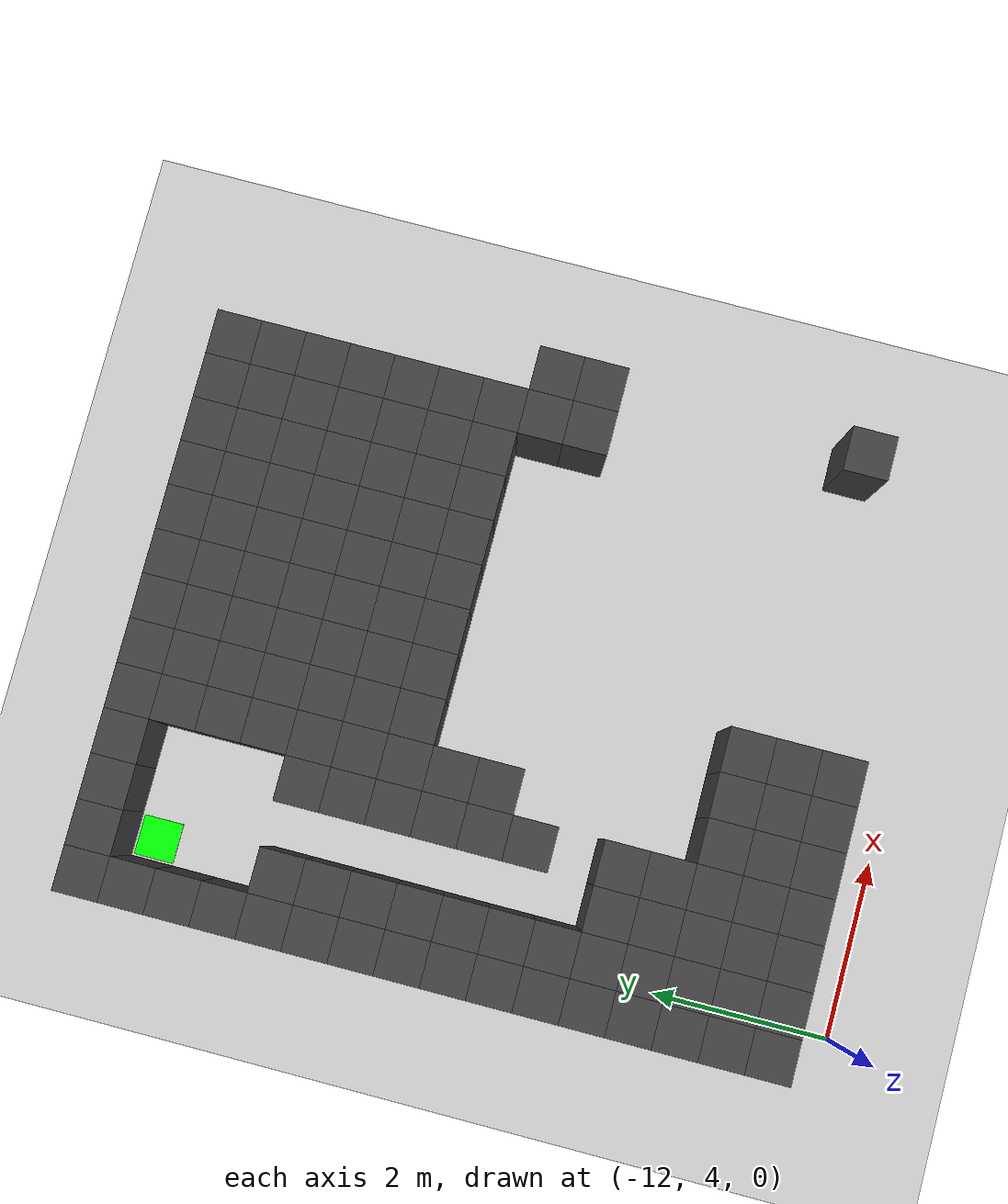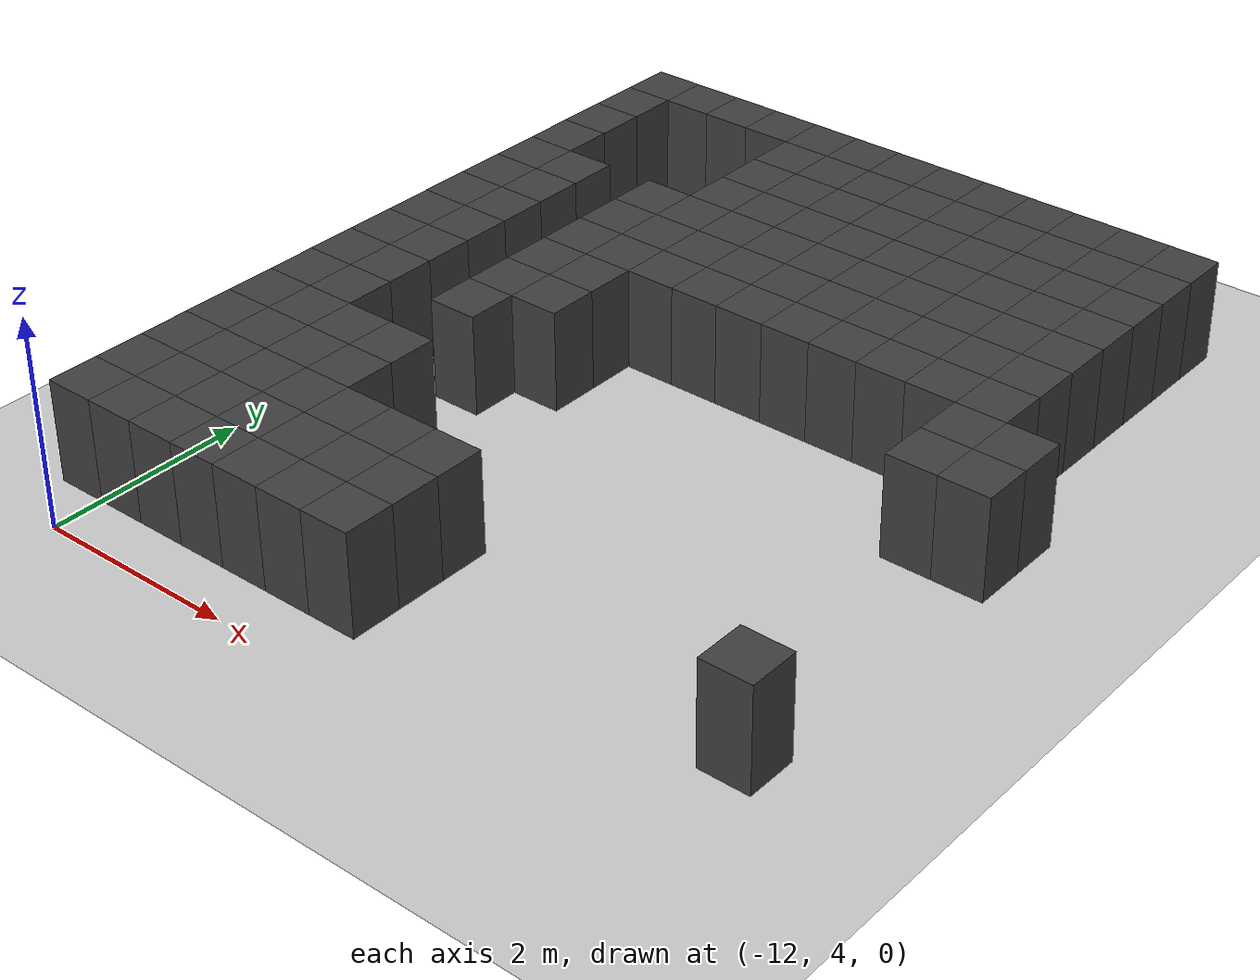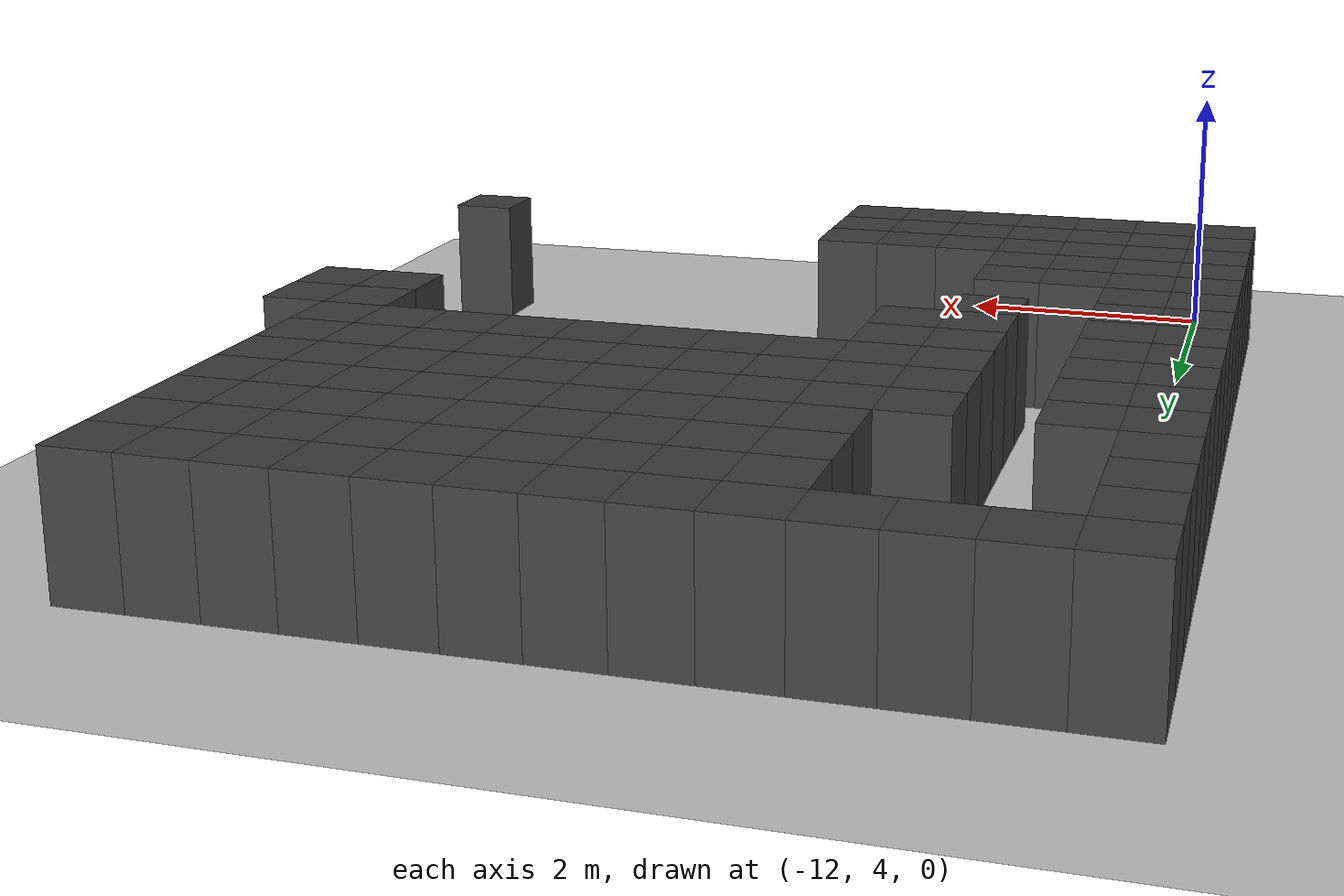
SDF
<sdf version="1.7">
 <world name="map_11672">
  <model name="ground_plane">
   <static>true</static>
   <link name="link">
    <collision name="collision">
     <geometry><plane><normal>0 0 1</normal><size>200 200</size></plane></geometry>
    </collision>
    <visual name="visual">
     <geometry><plane><normal>0 0 1</normal><size>200 200</size></plane></geometry>
     <material><ambient>0.8 0.8 0.8 1</ambient><diffuse>0.8 0.8 0.8 1</diffuse></material>
    </visual>
   </link>
  </model>
  <model name="maze_environment">
   <static>true</static>
   <link name="wall_0">
    <pose>-12.250 12.250 0.500 0 0 0</pose>
    <collision name="col"><geometry><box><size>0.5 0.5 1.0</size></box></geometry></collision>
    <visual name="vis">
     <geometry><box><size>0.5 0.5 1.0</size></box></geometry>
     <material><ambient>0.15 0.15 0.15 1</ambient><diffuse>0.25 0.25 0.25 1</diffuse></material>
    </visual>
   </link>
   <link name="wall_1">
    <pose>-11.750 12.250 0.500 0 0 0</pose>
    <collision name="col"><geometry><box><size>0.5 0.5 1.0</size></box></geometry></collision>
    <visual name="vis">
     <geometry><box><size>0.5 0.5 1.0</size></box></geometry>
     <material><ambient>0.15 0.15 0.15 1</ambient><diffuse>0.25 0.25 0.25 1</diffuse></material>
    </visual>
   </link>
   <link name="wall_2">
    <pose>-11.250 12.250 0.500 0 0 0</pose>
    <collision name="col"><geometry><box><size>0.5 0.5 1.0</size></box></geometry></collision>
    <visual name="vis">
     <geometry><box><size>0.5 0.5 1.0</size></box></geometry>
     <material><ambient>0.15 0.15 0.15 1</ambient><diffuse>0.25 0.25 0.25 1</diffuse></material>
    </visual>
   </link>
   <link name="wall_3">
    <pose>-10.750 12.250 0.500 0 0 0</pose>
    <collision name="col"><geometry><box><size>0.5 0.5 1.0</size></box></geometry></collision>
    <visual name="vis">
     <geometry><box><size>0.5 0.5 1.0</size></box></geometry>
     <material><ambient>0.15 0.15 0.15 1</ambient><diffuse>0.25 0.25 0.25 1</diffuse></material>
    </visual>
   </link>
   <link name="wall_4">
    <pose>-10.250 12.250 0.500 0 0 0</pose>
    <collision name="col"><geometry><box><size>0.5 0.5 1.0</size></box></geometry></collision>
    <visual name="vis">
     <geometry><box><size>0.5 0.5 1.0</size></box></geometry>
     <material><ambient>0.15 0.15 0.15 1</ambient><diffuse>0.25 0.25 0.25 1</diffuse></material>
    </visual>
   </link>
   <link name="wall_5">
    <pose>-9.750 12.250 0.500 0 0 0</pose>
    <collision name="col"><geometry><box><size>0.5 0.5 1.0</size></box></geometry></collision>
    <visual name="vis">
     <geometry><box><size>0.5 0.5 1.0</size></box></geometry>
     <material><ambient>0.15 0.15 0.15 1</ambient><diffuse>0.25 0.25 0.25 1</diffuse></material>
    </visual>
   </link>
   <link name="wall_6">
    <pose>-9.250 12.250 0.500 0 0 0</pose>
    <collision name="col"><geometry><box><size>0.5 0.5 1.0</size></box></geometry></collision>
    <visual name="vis">
     <geometry><box><size>0.5 0.5 1.0</size></box></geometry>
     <material><ambient>0.15 0.15 0.15 1</ambient><diffuse>0.25 0.25 0.25 1</diffuse></material>
    </visual>
   </link>
   <link name="wall_7">
    <pose>-8.750 12.250 0.500 0 0 0</pose>
    <collision name="col"><geometry><box><size>0.5 0.5 1.0</size></box></geometry></collision>
    <visual name="vis">
     <geometry><box><size>0.5 0.5 1.0</size></box></geometry>
     <material><ambient>0.15 0.15 0.15 1</ambient><diffuse>0.25 0.25 0.25 1</diffuse></material>
    </visual>
   </link>
   <link name="wall_8">
    <pose>-8.250 12.250 0.500 0 0 0</pose>
    <collision name="col"><geometry><box><size>0.5 0.5 1.0</size></box></geometry></collision>
    <visual name="vis">
     <geometry><box><size>0.5 0.5 1.0</size></box></geometry>
     <material><ambient>0.15 0.15 0.15 1</ambient><diffuse>0.25 0.25 0.25 1</diffuse></material>
    </visual>
   </link>
   <link name="wall_9">
    <pose>-7.750 12.250 0.500 0 0 0</pose>
    <collision name="col"><geometry><box><size>0.5 0.5 1.0</size></box></geometry></collision>
    <visual name="vis">
     <geometry><box><size>0.5 0.5 1.0</size></box></geometry>
     <material><ambient>0.15 0.15 0.15 1</ambient><diffuse>0.25 0.25 0.25 1</diffuse></material>
    </visual>
   </link>
   <link name="wall_10">
    <pose>-7.250 12.250 0.500 0 0 0</pose>
    <collision name="col"><geometry><box><size>0.5 0.5 1.0</size></box></geometry></collision>
    <visual name="vis">
     <geometry><box><size>0.5 0.5 1.0</size></box></geometry>
     <material><ambient>0.15 0.15 0.15 1</ambient><diffuse>0.25 0.25 0.25 1</diffuse></material>
    </visual>
   </link>
   <link name="wall_11">
    <pose>-6.750 12.250 0.500 0 0 0</pose>
    <collision name="col"><geometry><box><size>0.5 0.5 1.0</size></box></geometry></collision>
    <visual name="vis">
     <geometry><box><size>0.5 0.5 1.0</size></box></geometry>
     <material><ambient>0.15 0.15 0.15 1</ambient><diffuse>0.25 0.25 0.25 1</diffuse></material>
    </visual>
   </link>
   <link name="wall_12">
    <pose>-6.250 12.250 0.500 0 0 0</pose>
    <collision name="col"><geometry><box><size>0.5 0.5 1.0</size></box></geometry></collision>
    <visual name="vis">
     <geometry><box><size>0.5 0.5 1.0</size></box></geometry>
     <material><ambient>0.15 0.15 0.15 1</ambient><diffuse>0.25 0.25 0.25 1</diffuse></material>
    </visual>
   </link>
   <link name="wall_50">
    <pose>-12.250 11.750 0.500 0 0 0</pose>
    <collision name="col"><geometry><box><size>0.5 0.5 1.0</size></box></geometry></collision>
    <visual name="vis">
     <geometry><box><size>0.5 0.5 1.0</size></box></geometry>
     <material><ambient>0.15 0.15 0.15 1</ambient><diffuse>0.25 0.25 0.25 1</diffuse></material>
    </visual>
   </link>
   <link name="wall_51">
    <pose>-10.250 11.750 0.500 0 0 0</pose>
    <collision name="col"><geometry><box><size>0.5 0.5 1.0</size></box></geometry></collision>
    <visual name="vis">
     <geometry><box><size>0.5 0.5 1.0</size></box></geometry>
     <material><ambient>0.15 0.15 0.15 1</ambient><diffuse>0.25 0.25 0.25 1</diffuse></material>
    </visual>
   </link>
   <link name="wall_52">
    <pose>-9.750 11.750 0.500 0 0 0</pose>
    <collision name="col"><geometry><box><size>0.5 0.5 1.0</size></box></geometry></collision>
    <visual name="vis">
     <geometry><box><size>0.5 0.5 1.0</size></box></geometry>
     <material><ambient>0.15 0.15 0.15 1</ambient><diffuse>0.25 0.25 0.25 1</diffuse></material>
    </visual>
   </link>
   <link name="wall_53">
    <pose>-9.250 11.750 0.500 0 0 0</pose>
    <collision name="col"><geometry><box><size>0.5 0.5 1.0</size></box></geometry></collision>
    <visual name="vis">
     <geometry><box><size>0.5 0.5 1.0</size></box></geometry>
     <material><ambient>0.15 0.15 0.15 1</ambient><diffuse>0.25 0.25 0.25 1</diffuse></material>
    </visual>
   </link>
   <link name="wall_54">
    <pose>-8.750 11.750 0.500 0 0 0</pose>
    <collision name="col"><geometry><box><size>0.5 0.5 1.0</size></box></geometry></collision>
    <visual name="vis">
     <geometry><box><size>0.5 0.5 1.0</size></box></geometry>
     <material><ambient>0.15 0.15 0.15 1</ambient><diffuse>0.25 0.25 0.25 1</diffuse></material>
    </visual>
   </link>
   <link name="wall_55">
    <pose>-8.250 11.750 0.500 0 0 0</pose>
    <collision name="col"><geometry><box><size>0.5 0.5 1.0</size></box></geometry></collision>
    <visual name="vis">
     <geometry><box><size>0.5 0.5 1.0</size></box></geometry>
     <material><ambient>0.15 0.15 0.15 1</ambient><diffuse>0.25 0.25 0.25 1</diffuse></material>
    </visual>
   </link>
   <link name="wall_56">
    <pose>-7.750 11.750 0.500 0 0 0</pose>
    <collision name="col"><geometry><box><size>0.5 0.5 1.0</size></box></geometry></collision>
    <visual name="vis">
     <geometry><box><size>0.5 0.5 1.0</size></box></geometry>
     <material><ambient>0.15 0.15 0.15 1</ambient><diffuse>0.25 0.25 0.25 1</diffuse></material>
    </visual>
   </link>
   <link name="wall_57">
    <pose>-7.250 11.750 0.500 0 0 0</pose>
    <collision name="col"><geometry><box><size>0.5 0.5 1.0</size></box></geometry></collision>
    <visual name="vis">
     <geometry><box><size>0.5 0.5 1.0</size></box></geometry>
     <material><ambient>0.15 0.15 0.15 1</ambient><diffuse>0.25 0.25 0.25 1</diffuse></material>
    </visual>
   </link>
   <link name="wall_58">
    <pose>-6.750 11.750 0.500 0 0 0</pose>
    <collision name="col"><geometry><box><size>0.5 0.5 1.0</size></box></geometry></collision>
    <visual name="vis">
     <geometry><box><size>0.5 0.5 1.0</size></box></geometry>
     <material><ambient>0.15 0.15 0.15 1</ambient><diffuse>0.25 0.25 0.25 1</diffuse></material>
    </visual>
   </link>
   <link name="wall_59">
    <pose>-6.250 11.750 0.500 0 0 0</pose>
    <collision name="col"><geometry><box><size>0.5 0.5 1.0</size></box></geometry></collision>
    <visual name="vis">
     <geometry><box><size>0.5 0.5 1.0</size></box></geometry>
     <material><ambient>0.15 0.15 0.15 1</ambient><diffuse>0.25 0.25 0.25 1</diffuse></material>
    </visual>
   </link>
   <link name="wall_97">
    <pose>-12.250 11.250 0.500 0 0 0</pose>
    <collision name="col"><geometry><box><size>0.5 0.5 1.0</size></box></geometry></collision>
    <visual name="vis">
     <geometry><box><size>0.5 0.5 1.0</size></box></geometry>
     <material><ambient>0.15 0.15 0.15 1</ambient><diffuse>0.25 0.25 0.25 1</diffuse></material>
    </visual>
   </link>
   <link name="wall_98">
    <pose>-10.250 11.250 0.500 0 0 0</pose>
    <collision name="col"><geometry><box><size>0.5 0.5 1.0</size></box></geometry></collision>
    <visual name="vis">
     <geometry><box><size>0.5 0.5 1.0</size></box></geometry>
     <material><ambient>0.15 0.15 0.15 1</ambient><diffuse>0.25 0.25 0.25 1</diffuse></material>
    </visual>
   </link>
   <link name="wall_99">
    <pose>-9.750 11.250 0.500 0 0 0</pose>
    <collision name="col"><geometry><box><size>0.5 0.5 1.0</size></box></geometry></collision>
    <visual name="vis">
     <geometry><box><size>0.5 0.5 1.0</size></box></geometry>
     <material><ambient>0.15 0.15 0.15 1</ambient><diffuse>0.25 0.25 0.25 1</diffuse></material>
    </visual>
   </link>
   <link name="wall_100">
    <pose>-9.250 11.250 0.500 0 0 0</pose>
    <collision name="col"><geometry><box><size>0.5 0.5 1.0</size></box></geometry></collision>
    <visual name="vis">
     <geometry><box><size>0.5 0.5 1.0</size></box></geometry>
     <material><ambient>0.15 0.15 0.15 1</ambient><diffuse>0.25 0.25 0.25 1</diffuse></material>
    </visual>
   </link>
   <link name="wall_101">
    <pose>-8.750 11.250 0.500 0 0 0</pose>
    <collision name="col"><geometry><box><size>0.5 0.5 1.0</size></box></geometry></collision>
    <visual name="vis">
     <geometry><box><size>0.5 0.5 1.0</size></box></geometry>
     <material><ambient>0.15 0.15 0.15 1</ambient><diffuse>0.25 0.25 0.25 1</diffuse></material>
    </visual>
   </link>
   <link name="wall_102">
    <pose>-8.250 11.250 0.500 0 0 0</pose>
    <collision name="col"><geometry><box><size>0.5 0.5 1.0</size></box></geometry></collision>
    <visual name="vis">
     <geometry><box><size>0.5 0.5 1.0</size></box></geometry>
     <material><ambient>0.15 0.15 0.15 1</ambient><diffuse>0.25 0.25 0.25 1</diffuse></material>
    </visual>
   </link>
   <link name="wall_103">
    <pose>-7.750 11.250 0.500 0 0 0</pose>
    <collision name="col"><geometry><box><size>0.5 0.5 1.0</size></box></geometry></collision>
    <visual name="vis">
     <geometry><box><size>0.5 0.5 1.0</size></box></geometry>
     <material><ambient>0.15 0.15 0.15 1</ambient><diffuse>0.25 0.25 0.25 1</diffuse></material>
    </visual>
   </link>
   <link name="wall_104">
    <pose>-7.250 11.250 0.500 0 0 0</pose>
    <collision name="col"><geometry><box><size>0.5 0.5 1.0</size></box></geometry></collision>
    <visual name="vis">
     <geometry><box><size>0.5 0.5 1.0</size></box></geometry>
     <material><ambient>0.15 0.15 0.15 1</ambient><diffuse>0.25 0.25 0.25 1</diffuse></material>
    </visual>
   </link>
   <link name="wall_105">
    <pose>-6.750 11.250 0.500 0 0 0</pose>
    <collision name="col"><geometry><box><size>0.5 0.5 1.0</size></box></geometry></collision>
    <visual name="vis">
     <geometry><box><size>0.5 0.5 1.0</size></box></geometry>
     <material><ambient>0.15 0.15 0.15 1</ambient><diffuse>0.25 0.25 0.25 1</diffuse></material>
    </visual>
   </link>
   <link name="wall_106">
    <pose>-6.250 11.250 0.500 0 0 0</pose>
    <collision name="col"><geometry><box><size>0.5 0.5 1.0</size></box></geometry></collision>
    <visual name="vis">
     <geometry><box><size>0.5 0.5 1.0</size></box></geometry>
     <material><ambient>0.15 0.15 0.15 1</ambient><diffuse>0.25 0.25 0.25 1</diffuse></material>
    </visual>
   </link>
   <link name="wall_144">
    <pose>-12.250 10.750 0.500 0 0 0</pose>
    <collision name="col"><geometry><box><size>0.5 0.5 1.0</size></box></geometry></collision>
    <visual name="vis">
     <geometry><box><size>0.5 0.5 1.0</size></box></geometry>
     <material><ambient>0.15 0.15 0.15 1</ambient><diffuse>0.25 0.25 0.25 1</diffuse></material>
    </visual>
   </link>
   <link name="wall_145">
    <pose>-10.250 10.750 0.500 0 0 0</pose>
    <collision name="col"><geometry><box><size>0.5 0.5 1.0</size></box></geometry></collision>
    <visual name="vis">
     <geometry><box><size>0.5 0.5 1.0</size></box></geometry>
     <material><ambient>0.15 0.15 0.15 1</ambient><diffuse>0.25 0.25 0.25 1</diffuse></material>
    </visual>
   </link>
   <link name="wall_146">
    <pose>-9.750 10.750 0.500 0 0 0</pose>
    <collision name="col"><geometry><box><size>0.5 0.5 1.0</size></box></geometry></collision>
    <visual name="vis">
     <geometry><box><size>0.5 0.5 1.0</size></box></geometry>
     <material><ambient>0.15 0.15 0.15 1</ambient><diffuse>0.25 0.25 0.25 1</diffuse></material>
    </visual>
   </link>
   <link name="wall_147">
    <pose>-9.250 10.750 0.500 0 0 0</pose>
    <collision name="col"><geometry><box><size>0.5 0.5 1.0</size></box></geometry></collision>
    <visual name="vis">
     <geometry><box><size>0.5 0.5 1.0</size></box></geometry>
     <material><ambient>0.15 0.15 0.15 1</ambient><diffuse>0.25 0.25 0.25 1</diffuse></material>
    </visual>
   </link>
   <link name="wall_148">
    <pose>-8.750 10.750 0.500 0 0 0</pose>
    <collision name="col"><geometry><box><size>0.5 0.5 1.0</size></box></geometry></collision>
    <visual name="vis">
     <geometry><box><size>0.5 0.5 1.0</size></box></geometry>
     <material><ambient>0.15 0.15 0.15 1</ambient><diffuse>0.25 0.25 0.25 1</diffuse></material>
    </visual>
   </link>
   <link name="wall_149">
    <pose>-8.250 10.750 0.500 0 0 0</pose>
    <collision name="col"><geometry><box><size>0.5 0.5 1.0</size></box></geometry></collision>
    <visual name="vis">
     <geometry><box><size>0.5 0.5 1.0</size></box></geometry>
     <material><ambient>0.15 0.15 0.15 1</ambient><diffuse>0.25 0.25 0.25 1</diffuse></material>
    </visual>
   </link>
   <link name="wall_150">
    <pose>-7.750 10.750 0.500 0 0 0</pose>
    <collision name="col"><geometry><box><size>0.5 0.5 1.0</size></box></geometry></collision>
    <visual name="vis">
     <geometry><box><size>0.5 0.5 1.0</size></box></geometry>
     <material><ambient>0.15 0.15 0.15 1</ambient><diffuse>0.25 0.25 0.25 1</diffuse></material>
    </visual>
   </link>
   <link name="wall_151">
    <pose>-7.250 10.750 0.500 0 0 0</pose>
    <collision name="col"><geometry><box><size>0.5 0.5 1.0</size></box></geometry></collision>
    <visual name="vis">
     <geometry><box><size>0.5 0.5 1.0</size></box></geometry>
     <material><ambient>0.15 0.15 0.15 1</ambient><diffuse>0.25 0.25 0.25 1</diffuse></material>
    </visual>
   </link>
   <link name="wall_152">
    <pose>-6.750 10.750 0.500 0 0 0</pose>
    <collision name="col"><geometry><box><size>0.5 0.5 1.0</size></box></geometry></collision>
    <visual name="vis">
     <geometry><box><size>0.5 0.5 1.0</size></box></geometry>
     <material><ambient>0.15 0.15 0.15 1</ambient><diffuse>0.25 0.25 0.25 1</diffuse></material>
    </visual>
   </link>
   <link name="wall_153">
    <pose>-6.250 10.750 0.500 0 0 0</pose>
    <collision name="col"><geometry><box><size>0.5 0.5 1.0</size></box></geometry></collision>
    <visual name="vis">
     <geometry><box><size>0.5 0.5 1.0</size></box></geometry>
     <material><ambient>0.15 0.15 0.15 1</ambient><diffuse>0.25 0.25 0.25 1</diffuse></material>
    </visual>
   </link>
   <link name="wall_191">
    <pose>-12.250 10.250 0.500 0 0 0</pose>
    <collision name="col"><geometry><box><size>0.5 0.5 1.0</size></box></geometry></collision>
    <visual name="vis">
     <geometry><box><size>0.5 0.5 1.0</size></box></geometry>
     <material><ambient>0.15 0.15 0.15 1</ambient><diffuse>0.25 0.25 0.25 1</diffuse></material>
    </visual>
   </link>
   <link name="wall_192">
    <pose>-11.750 10.250 0.500 0 0 0</pose>
    <collision name="col"><geometry><box><size>0.5 0.5 1.0</size></box></geometry></collision>
    <visual name="vis">
     <geometry><box><size>0.5 0.5 1.0</size></box></geometry>
     <material><ambient>0.15 0.15 0.15 1</ambient><diffuse>0.25 0.25 0.25 1</diffuse></material>
    </visual>
   </link>
   <link name="wall_193">
    <pose>-10.750 10.250 0.500 0 0 0</pose>
    <collision name="col"><geometry><box><size>0.5 0.5 1.0</size></box></geometry></collision>
    <visual name="vis">
     <geometry><box><size>0.5 0.5 1.0</size></box></geometry>
     <material><ambient>0.15 0.15 0.15 1</ambient><diffuse>0.25 0.25 0.25 1</diffuse></material>
    </visual>
   </link>
   <link name="wall_194">
    <pose>-10.250 10.250 0.500 0 0 0</pose>
    <collision name="col"><geometry><box><size>0.5 0.5 1.0</size></box></geometry></collision>
    <visual name="vis">
     <geometry><box><size>0.5 0.5 1.0</size></box></geometry>
     <material><ambient>0.15 0.15 0.15 1</ambient><diffuse>0.25 0.25 0.25 1</diffuse></material>
    </visual>
   </link>
   <link name="wall_195">
    <pose>-9.750 10.250 0.500 0 0 0</pose>
    <collision name="col"><geometry><box><size>0.5 0.5 1.0</size></box></geometry></collision>
    <visual name="vis">
     <geometry><box><size>0.5 0.5 1.0</size></box></geometry>
     <material><ambient>0.15 0.15 0.15 1</ambient><diffuse>0.25 0.25 0.25 1</diffuse></material>
    </visual>
   </link>
   <link name="wall_196">
    <pose>-9.250 10.250 0.500 0 0 0</pose>
    <collision name="col"><geometry><box><size>0.5 0.5 1.0</size></box></geometry></collision>
    <visual name="vis">
     <geometry><box><size>0.5 0.5 1.0</size></box></geometry>
     <material><ambient>0.15 0.15 0.15 1</ambient><diffuse>0.25 0.25 0.25 1</diffuse></material>
    </visual>
   </link>
   <link name="wall_197">
    <pose>-8.750 10.250 0.500 0 0 0</pose>
    <collision name="col"><geometry><box><size>0.5 0.5 1.0</size></box></geometry></collision>
    <visual name="vis">
     <geometry><box><size>0.5 0.5 1.0</size></box></geometry>
     <material><ambient>0.15 0.15 0.15 1</ambient><diffuse>0.25 0.25 0.25 1</diffuse></material>
    </visual>
   </link>
   <link name="wall_198">
    <pose>-8.250 10.250 0.500 0 0 0</pose>
    <collision name="col"><geometry><box><size>0.5 0.5 1.0</size></box></geometry></collision>
    <visual name="vis">
     <geometry><box><size>0.5 0.5 1.0</size></box></geometry>
     <material><ambient>0.15 0.15 0.15 1</ambient><diffuse>0.25 0.25 0.25 1</diffuse></material>
    </visual>
   </link>
   <link name="wall_199">
    <pose>-7.750 10.250 0.500 0 0 0</pose>
    <collision name="col"><geometry><box><size>0.5 0.5 1.0</size></box></geometry></collision>
    <visual name="vis">
     <geometry><box><size>0.5 0.5 1.0</size></box></geometry>
     <material><ambient>0.15 0.15 0.15 1</ambient><diffuse>0.25 0.25 0.25 1</diffuse></material>
    </visual>
   </link>
   <link name="wall_200">
    <pose>-7.250 10.250 0.500 0 0 0</pose>
    <collision name="col"><geometry><box><size>0.5 0.5 1.0</size></box></geometry></collision>
    <visual name="vis">
     <geometry><box><size>0.5 0.5 1.0</size></box></geometry>
     <material><ambient>0.15 0.15 0.15 1</ambient><diffuse>0.25 0.25 0.25 1</diffuse></material>
    </visual>
   </link>
   <link name="wall_201">
    <pose>-6.750 10.250 0.500 0 0 0</pose>
    <collision name="col"><geometry><box><size>0.5 0.5 1.0</size></box></geometry></collision>
    <visual name="vis">
     <geometry><box><size>0.5 0.5 1.0</size></box></geometry>
     <material><ambient>0.15 0.15 0.15 1</ambient><diffuse>0.25 0.25 0.25 1</diffuse></material>
    </visual>
   </link>
   <link name="wall_202">
    <pose>-6.250 10.250 0.500 0 0 0</pose>
    <collision name="col"><geometry><box><size>0.5 0.5 1.0</size></box></geometry></collision>
    <visual name="vis">
     <geometry><box><size>0.5 0.5 1.0</size></box></geometry>
     <material><ambient>0.15 0.15 0.15 1</ambient><diffuse>0.25 0.25 0.25 1</diffuse></material>
    </visual>
   </link>
   <link name="wall_240">
    <pose>-12.250 9.750 0.500 0 0 0</pose>
    <collision name="col"><geometry><box><size>0.5 0.5 1.0</size></box></geometry></collision>
    <visual name="vis">
     <geometry><box><size>0.5 0.5 1.0</size></box></geometry>
     <material><ambient>0.15 0.15 0.15 1</ambient><diffuse>0.25 0.25 0.25 1</diffuse></material>
    </visual>
   </link>
   <link name="wall_241">
    <pose>-11.750 9.750 0.500 0 0 0</pose>
    <collision name="col"><geometry><box><size>0.5 0.5 1.0</size></box></geometry></collision>
    <visual name="vis">
     <geometry><box><size>0.5 0.5 1.0</size></box></geometry>
     <material><ambient>0.15 0.15 0.15 1</ambient><diffuse>0.25 0.25 0.25 1</diffuse></material>
    </visual>
   </link>
   <link name="wall_242">
    <pose>-10.750 9.750 0.500 0 0 0</pose>
    <collision name="col"><geometry><box><size>0.5 0.5 1.0</size></box></geometry></collision>
    <visual name="vis">
     <geometry><box><size>0.5 0.5 1.0</size></box></geometry>
     <material><ambient>0.15 0.15 0.15 1</ambient><diffuse>0.25 0.25 0.25 1</diffuse></material>
    </visual>
   </link>
   <link name="wall_243">
    <pose>-10.250 9.750 0.500 0 0 0</pose>
    <collision name="col"><geometry><box><size>0.5 0.5 1.0</size></box></geometry></collision>
    <visual name="vis">
     <geometry><box><size>0.5 0.5 1.0</size></box></geometry>
     <material><ambient>0.15 0.15 0.15 1</ambient><diffuse>0.25 0.25 0.25 1</diffuse></material>
    </visual>
   </link>
   <link name="wall_244">
    <pose>-9.750 9.750 0.500 0 0 0</pose>
    <collision name="col"><geometry><box><size>0.5 0.5 1.0</size></box></geometry></collision>
    <visual name="vis">
     <geometry><box><size>0.5 0.5 1.0</size></box></geometry>
     <material><ambient>0.15 0.15 0.15 1</ambient><diffuse>0.25 0.25 0.25 1</diffuse></material>
    </visual>
   </link>
   <link name="wall_245">
    <pose>-9.250 9.750 0.500 0 0 0</pose>
    <collision name="col"><geometry><box><size>0.5 0.5 1.0</size></box></geometry></collision>
    <visual name="vis">
     <geometry><box><size>0.5 0.5 1.0</size></box></geometry>
     <material><ambient>0.15 0.15 0.15 1</ambient><diffuse>0.25 0.25 0.25 1</diffuse></material>
    </visual>
   </link>
   <link name="wall_246">
    <pose>-8.750 9.750 0.500 0 0 0</pose>
    <collision name="col"><geometry><box><size>0.5 0.5 1.0</size></box></geometry></collision>
    <visual name="vis">
     <geometry><box><size>0.5 0.5 1.0</size></box></geometry>
     <material><ambient>0.15 0.15 0.15 1</ambient><diffuse>0.25 0.25 0.25 1</diffuse></material>
    </visual>
   </link>
   <link name="wall_247">
    <pose>-8.250 9.750 0.500 0 0 0</pose>
    <collision name="col"><geometry><box><size>0.5 0.5 1.0</size></box></geometry></collision>
    <visual name="vis">
     <geometry><box><size>0.5 0.5 1.0</size></box></geometry>
     <material><ambient>0.15 0.15 0.15 1</ambient><diffuse>0.25 0.25 0.25 1</diffuse></material>
    </visual>
   </link>
   <link name="wall_248">
    <pose>-7.750 9.750 0.500 0 0 0</pose>
    <collision name="col"><geometry><box><size>0.5 0.5 1.0</size></box></geometry></collision>
    <visual name="vis">
     <geometry><box><size>0.5 0.5 1.0</size></box></geometry>
     <material><ambient>0.15 0.15 0.15 1</ambient><diffuse>0.25 0.25 0.25 1</diffuse></material>
    </visual>
   </link>
   <link name="wall_249">
    <pose>-7.250 9.750 0.500 0 0 0</pose>
    <collision name="col"><geometry><box><size>0.5 0.5 1.0</size></box></geometry></collision>
    <visual name="vis">
     <geometry><box><size>0.5 0.5 1.0</size></box></geometry>
     <material><ambient>0.15 0.15 0.15 1</ambient><diffuse>0.25 0.25 0.25 1</diffuse></material>
    </visual>
   </link>
   <link name="wall_250">
    <pose>-6.750 9.750 0.500 0 0 0</pose>
    <collision name="col"><geometry><box><size>0.5 0.5 1.0</size></box></geometry></collision>
    <visual name="vis">
     <geometry><box><size>0.5 0.5 1.0</size></box></geometry>
     <material><ambient>0.15 0.15 0.15 1</ambient><diffuse>0.25 0.25 0.25 1</diffuse></material>
    </visual>
   </link>
   <link name="wall_251">
    <pose>-6.250 9.750 0.500 0 0 0</pose>
    <collision name="col"><geometry><box><size>0.5 0.5 1.0</size></box></geometry></collision>
    <visual name="vis">
     <geometry><box><size>0.5 0.5 1.0</size></box></geometry>
     <material><ambient>0.15 0.15 0.15 1</ambient><diffuse>0.25 0.25 0.25 1</diffuse></material>
    </visual>
   </link>
   <link name="wall_289">
    <pose>-12.250 9.250 0.500 0 0 0</pose>
    <collision name="col"><geometry><box><size>0.5 0.5 1.0</size></box></geometry></collision>
    <visual name="vis">
     <geometry><box><size>0.5 0.5 1.0</size></box></geometry>
     <material><ambient>0.15 0.15 0.15 1</ambient><diffuse>0.25 0.25 0.25 1</diffuse></material>
    </visual>
   </link>
   <link name="wall_290">
    <pose>-11.750 9.250 0.500 0 0 0</pose>
    <collision name="col"><geometry><box><size>0.5 0.5 1.0</size></box></geometry></collision>
    <visual name="vis">
     <geometry><box><size>0.5 0.5 1.0</size></box></geometry>
     <material><ambient>0.15 0.15 0.15 1</ambient><diffuse>0.25 0.25 0.25 1</diffuse></material>
    </visual>
   </link>
   <link name="wall_291">
    <pose>-10.750 9.250 0.500 0 0 0</pose>
    <collision name="col"><geometry><box><size>0.5 0.5 1.0</size></box></geometry></collision>
    <visual name="vis">
     <geometry><box><size>0.5 0.5 1.0</size></box></geometry>
     <material><ambient>0.15 0.15 0.15 1</ambient><diffuse>0.25 0.25 0.25 1</diffuse></material>
    </visual>
   </link>
   <link name="wall_292">
    <pose>-10.250 9.250 0.500 0 0 0</pose>
    <collision name="col"><geometry><box><size>0.5 0.5 1.0</size></box></geometry></collision>
    <visual name="vis">
     <geometry><box><size>0.5 0.5 1.0</size></box></geometry>
     <material><ambient>0.15 0.15 0.15 1</ambient><diffuse>0.25 0.25 0.25 1</diffuse></material>
    </visual>
   </link>
   <link name="wall_293">
    <pose>-9.750 9.250 0.500 0 0 0</pose>
    <collision name="col"><geometry><box><size>0.5 0.5 1.0</size></box></geometry></collision>
    <visual name="vis">
     <geometry><box><size>0.5 0.5 1.0</size></box></geometry>
     <material><ambient>0.15 0.15 0.15 1</ambient><diffuse>0.25 0.25 0.25 1</diffuse></material>
    </visual>
   </link>
   <link name="wall_294">
    <pose>-9.250 9.250 0.500 0 0 0</pose>
    <collision name="col"><geometry><box><size>0.5 0.5 1.0</size></box></geometry></collision>
    <visual name="vis">
     <geometry><box><size>0.5 0.5 1.0</size></box></geometry>
     <material><ambient>0.15 0.15 0.15 1</ambient><diffuse>0.25 0.25 0.25 1</diffuse></material>
    </visual>
   </link>
   <link name="wall_295">
    <pose>-8.750 9.250 0.500 0 0 0</pose>
    <collision name="col"><geometry><box><size>0.5 0.5 1.0</size></box></geometry></collision>
    <visual name="vis">
     <geometry><box><size>0.5 0.5 1.0</size></box></geometry>
     <material><ambient>0.15 0.15 0.15 1</ambient><diffuse>0.25 0.25 0.25 1</diffuse></material>
    </visual>
   </link>
   <link name="wall_296">
    <pose>-8.250 9.250 0.500 0 0 0</pose>
    <collision name="col"><geometry><box><size>0.5 0.5 1.0</size></box></geometry></collision>
    <visual name="vis">
     <geometry><box><size>0.5 0.5 1.0</size></box></geometry>
     <material><ambient>0.15 0.15 0.15 1</ambient><diffuse>0.25 0.25 0.25 1</diffuse></material>
    </visual>
   </link>
   <link name="wall_297">
    <pose>-7.750 9.250 0.500 0 0 0</pose>
    <collision name="col"><geometry><box><size>0.5 0.5 1.0</size></box></geometry></collision>
    <visual name="vis">
     <geometry><box><size>0.5 0.5 1.0</size></box></geometry>
     <material><ambient>0.15 0.15 0.15 1</ambient><diffuse>0.25 0.25 0.25 1</diffuse></material>
    </visual>
   </link>
   <link name="wall_298">
    <pose>-7.250 9.250 0.500 0 0 0</pose>
    <collision name="col"><geometry><box><size>0.5 0.5 1.0</size></box></geometry></collision>
    <visual name="vis">
     <geometry><box><size>0.5 0.5 1.0</size></box></geometry>
     <material><ambient>0.15 0.15 0.15 1</ambient><diffuse>0.25 0.25 0.25 1</diffuse></material>
    </visual>
   </link>
   <link name="wall_299">
    <pose>-6.750 9.250 0.500 0 0 0</pose>
    <collision name="col"><geometry><box><size>0.5 0.5 1.0</size></box></geometry></collision>
    <visual name="vis">
     <geometry><box><size>0.5 0.5 1.0</size></box></geometry>
     <material><ambient>0.15 0.15 0.15 1</ambient><diffuse>0.25 0.25 0.25 1</diffuse></material>
    </visual>
   </link>
   <link name="wall_300">
    <pose>-6.250 9.250 0.500 0 0 0</pose>
    <collision name="col"><geometry><box><size>0.5 0.5 1.0</size></box></geometry></collision>
    <visual name="vis">
     <geometry><box><size>0.5 0.5 1.0</size></box></geometry>
     <material><ambient>0.15 0.15 0.15 1</ambient><diffuse>0.25 0.25 0.25 1</diffuse></material>
    </visual>
   </link>
   <link name="wall_338">
    <pose>-12.250 8.750 0.500 0 0 0</pose>
    <collision name="col"><geometry><box><size>0.5 0.5 1.0</size></box></geometry></collision>
    <visual name="vis">
     <geometry><box><size>0.5 0.5 1.0</size></box></geometry>
     <material><ambient>0.15 0.15 0.15 1</ambient><diffuse>0.25 0.25 0.25 1</diffuse></material>
    </visual>
   </link>
   <link name="wall_339">
    <pose>-11.750 8.750 0.500 0 0 0</pose>
    <collision name="col"><geometry><box><size>0.5 0.5 1.0</size></box></geometry></collision>
    <visual name="vis">
     <geometry><box><size>0.5 0.5 1.0</size></box></geometry>
     <material><ambient>0.15 0.15 0.15 1</ambient><diffuse>0.25 0.25 0.25 1</diffuse></material>
    </visual>
   </link>
   <link name="wall_340">
    <pose>-10.750 8.750 0.500 0 0 0</pose>
    <collision name="col"><geometry><box><size>0.5 0.5 1.0</size></box></geometry></collision>
    <visual name="vis">
     <geometry><box><size>0.5 0.5 1.0</size></box></geometry>
     <material><ambient>0.15 0.15 0.15 1</ambient><diffuse>0.25 0.25 0.25 1</diffuse></material>
    </visual>
   </link>
   <link name="wall_341">
    <pose>-10.250 8.750 0.500 0 0 0</pose>
    <collision name="col"><geometry><box><size>0.5 0.5 1.0</size></box></geometry></collision>
    <visual name="vis">
     <geometry><box><size>0.5 0.5 1.0</size></box></geometry>
     <material><ambient>0.15 0.15 0.15 1</ambient><diffuse>0.25 0.25 0.25 1</diffuse></material>
    </visual>
   </link>
   <link name="wall_342">
    <pose>-6.250 8.750 0.500 0 0 0</pose>
    <collision name="col"><geometry><box><size>0.5 0.5 1.0</size></box></geometry></collision>
    <visual name="vis">
     <geometry><box><size>0.5 0.5 1.0</size></box></geometry>
     <material><ambient>0.15 0.15 0.15 1</ambient><diffuse>0.25 0.25 0.25 1</diffuse></material>
    </visual>
   </link>
   <link name="wall_343">
    <pose>-5.750 8.750 0.500 0 0 0</pose>
    <collision name="col"><geometry><box><size>0.5 0.5 1.0</size></box></geometry></collision>
    <visual name="vis">
     <geometry><box><size>0.5 0.5 1.0</size></box></geometry>
     <material><ambient>0.15 0.15 0.15 1</ambient><diffuse>0.25 0.25 0.25 1</diffuse></material>
    </visual>
   </link>
   <link name="wall_380">
    <pose>-12.250 8.250 0.500 0 0 0</pose>
    <collision name="col"><geometry><box><size>0.5 0.5 1.0</size></box></geometry></collision>
    <visual name="vis">
     <geometry><box><size>0.5 0.5 1.0</size></box></geometry>
     <material><ambient>0.15 0.15 0.15 1</ambient><diffuse>0.25 0.25 0.25 1</diffuse></material>
    </visual>
   </link>
   <link name="wall_381">
    <pose>-11.750 8.250 0.500 0 0 0</pose>
    <collision name="col"><geometry><box><size>0.5 0.5 1.0</size></box></geometry></collision>
    <visual name="vis">
     <geometry><box><size>0.5 0.5 1.0</size></box></geometry>
     <material><ambient>0.15 0.15 0.15 1</ambient><diffuse>0.25 0.25 0.25 1</diffuse></material>
    </visual>
   </link>
   <link name="wall_382">
    <pose>-10.750 8.250 0.500 0 0 0</pose>
    <collision name="col"><geometry><box><size>0.5 0.5 1.0</size></box></geometry></collision>
    <visual name="vis">
     <geometry><box><size>0.5 0.5 1.0</size></box></geometry>
     <material><ambient>0.15 0.15 0.15 1</ambient><diffuse>0.25 0.25 0.25 1</diffuse></material>
    </visual>
   </link>
   <link name="wall_383">
    <pose>-10.250 8.250 0.500 0 0 0</pose>
    <collision name="col"><geometry><box><size>0.5 0.5 1.0</size></box></geometry></collision>
    <visual name="vis">
     <geometry><box><size>0.5 0.5 1.0</size></box></geometry>
     <material><ambient>0.15 0.15 0.15 1</ambient><diffuse>0.25 0.25 0.25 1</diffuse></material>
    </visual>
   </link>
   <link name="wall_384">
    <pose>-6.250 8.250 0.500 0 0 0</pose>
    <collision name="col"><geometry><box><size>0.5 0.5 1.0</size></box></geometry></collision>
    <visual name="vis">
     <geometry><box><size>0.5 0.5 1.0</size></box></geometry>
     <material><ambient>0.15 0.15 0.15 1</ambient><diffuse>0.25 0.25 0.25 1</diffuse></material>
    </visual>
   </link>
   <link name="wall_385">
    <pose>-5.750 8.250 0.500 0 0 0</pose>
    <collision name="col"><geometry><box><size>0.5 0.5 1.0</size></box></geometry></collision>
    <visual name="vis">
     <geometry><box><size>0.5 0.5 1.0</size></box></geometry>
     <material><ambient>0.15 0.15 0.15 1</ambient><diffuse>0.25 0.25 0.25 1</diffuse></material>
    </visual>
   </link>
   <link name="wall_417">
    <pose>-12.250 7.750 0.500 0 0 0</pose>
    <collision name="col"><geometry><box><size>0.5 0.5 1.0</size></box></geometry></collision>
    <visual name="vis">
     <geometry><box><size>0.5 0.5 1.0</size></box></geometry>
     <material><ambient>0.15 0.15 0.15 1</ambient><diffuse>0.25 0.25 0.25 1</diffuse></material>
    </visual>
   </link>
   <link name="wall_418">
    <pose>-11.750 7.750 0.500 0 0 0</pose>
    <collision name="col"><geometry><box><size>0.5 0.5 1.0</size></box></geometry></collision>
    <visual name="vis">
     <geometry><box><size>0.5 0.5 1.0</size></box></geometry>
     <material><ambient>0.15 0.15 0.15 1</ambient><diffuse>0.25 0.25 0.25 1</diffuse></material>
    </visual>
   </link>
   <link name="wall_419">
    <pose>-10.750 7.750 0.500 0 0 0</pose>
    <collision name="col"><geometry><box><size>0.5 0.5 1.0</size></box></geometry></collision>
    <visual name="vis">
     <geometry><box><size>0.5 0.5 1.0</size></box></geometry>
     <material><ambient>0.15 0.15 0.15 1</ambient><diffuse>0.25 0.25 0.25 1</diffuse></material>
    </visual>
   </link>
   <link name="wall_447">
    <pose>-12.250 7.250 0.500 0 0 0</pose>
    <collision name="col"><geometry><box><size>0.5 0.5 1.0</size></box></geometry></collision>
    <visual name="vis">
     <geometry><box><size>0.5 0.5 1.0</size></box></geometry>
     <material><ambient>0.15 0.15 0.15 1</ambient><diffuse>0.25 0.25 0.25 1</diffuse></material>
    </visual>
   </link>
   <link name="wall_448">
    <pose>-11.750 7.250 0.500 0 0 0</pose>
    <collision name="col"><geometry><box><size>0.5 0.5 1.0</size></box></geometry></collision>
    <visual name="vis">
     <geometry><box><size>0.5 0.5 1.0</size></box></geometry>
     <material><ambient>0.15 0.15 0.15 1</ambient><diffuse>0.25 0.25 0.25 1</diffuse></material>
    </visual>
   </link>
   <link name="wall_476">
    <pose>-12.250 6.750 0.500 0 0 0</pose>
    <collision name="col"><geometry><box><size>0.5 0.5 1.0</size></box></geometry></collision>
    <visual name="vis">
     <geometry><box><size>0.5 0.5 1.0</size></box></geometry>
     <material><ambient>0.15 0.15 0.15 1</ambient><diffuse>0.25 0.25 0.25 1</diffuse></material>
    </visual>
   </link>
   <link name="wall_477">
    <pose>-11.750 6.750 0.500 0 0 0</pose>
    <collision name="col"><geometry><box><size>0.5 0.5 1.0</size></box></geometry></collision>
    <visual name="vis">
     <geometry><box><size>0.5 0.5 1.0</size></box></geometry>
     <material><ambient>0.15 0.15 0.15 1</ambient><diffuse>0.25 0.25 0.25 1</diffuse></material>
    </visual>
   </link>
   <link name="wall_478">
    <pose>-11.250 6.750 0.500 0 0 0</pose>
    <collision name="col"><geometry><box><size>0.5 0.5 1.0</size></box></geometry></collision>
    <visual name="vis">
     <geometry><box><size>0.5 0.5 1.0</size></box></geometry>
     <material><ambient>0.15 0.15 0.15 1</ambient><diffuse>0.25 0.25 0.25 1</diffuse></material>
    </visual>
   </link>
   <link name="wall_479">
    <pose>-10.750 6.750 0.500 0 0 0</pose>
    <collision name="col"><geometry><box><size>0.5 0.5 1.0</size></box></geometry></collision>
    <visual name="vis">
     <geometry><box><size>0.5 0.5 1.0</size></box></geometry>
     <material><ambient>0.15 0.15 0.15 1</ambient><diffuse>0.25 0.25 0.25 1</diffuse></material>
    </visual>
   </link>
   <link name="wall_498">
    <pose>-12.250 6.250 0.500 0 0 0</pose>
    <collision name="col"><geometry><box><size>0.5 0.5 1.0</size></box></geometry></collision>
    <visual name="vis">
     <geometry><box><size>0.5 0.5 1.0</size></box></geometry>
     <material><ambient>0.15 0.15 0.15 1</ambient><diffuse>0.25 0.25 0.25 1</diffuse></material>
    </visual>
   </link>
   <link name="wall_499">
    <pose>-11.750 6.250 0.500 0 0 0</pose>
    <collision name="col"><geometry><box><size>0.5 0.5 1.0</size></box></geometry></collision>
    <visual name="vis">
     <geometry><box><size>0.5 0.5 1.0</size></box></geometry>
     <material><ambient>0.15 0.15 0.15 1</ambient><diffuse>0.25 0.25 0.25 1</diffuse></material>
    </visual>
   </link>
   <link name="wall_500">
    <pose>-11.250 6.250 0.500 0 0 0</pose>
    <collision name="col"><geometry><box><size>0.5 0.5 1.0</size></box></geometry></collision>
    <visual name="vis">
     <geometry><box><size>0.5 0.5 1.0</size></box></geometry>
     <material><ambient>0.15 0.15 0.15 1</ambient><diffuse>0.25 0.25 0.25 1</diffuse></material>
    </visual>
   </link>
   <link name="wall_501">
    <pose>-10.750 6.250 0.500 0 0 0</pose>
    <collision name="col"><geometry><box><size>0.5 0.5 1.0</size></box></geometry></collision>
    <visual name="vis">
     <geometry><box><size>0.5 0.5 1.0</size></box></geometry>
     <material><ambient>0.15 0.15 0.15 1</ambient><diffuse>0.25 0.25 0.25 1</diffuse></material>
    </visual>
   </link>
   <link name="wall_524">
    <pose>-12.250 5.750 0.500 0 0 0</pose>
    <collision name="col"><geometry><box><size>0.5 0.5 1.0</size></box></geometry></collision>
    <visual name="vis">
     <geometry><box><size>0.5 0.5 1.0</size></box></geometry>
     <material><ambient>0.15 0.15 0.15 1</ambient><diffuse>0.25 0.25 0.25 1</diffuse></material>
    </visual>
   </link>
   <link name="wall_525">
    <pose>-11.750 5.750 0.500 0 0 0</pose>
    <collision name="col"><geometry><box><size>0.5 0.5 1.0</size></box></geometry></collision>
    <visual name="vis">
     <geometry><box><size>0.5 0.5 1.0</size></box></geometry>
     <material><ambient>0.15 0.15 0.15 1</ambient><diffuse>0.25 0.25 0.25 1</diffuse></material>
    </visual>
   </link>
   <link name="wall_526">
    <pose>-11.250 5.750 0.500 0 0 0</pose>
    <collision name="col"><geometry><box><size>0.5 0.5 1.0</size></box></geometry></collision>
    <visual name="vis">
     <geometry><box><size>0.5 0.5 1.0</size></box></geometry>
     <material><ambient>0.15 0.15 0.15 1</ambient><diffuse>0.25 0.25 0.25 1</diffuse></material>
    </visual>
   </link>
   <link name="wall_527">
    <pose>-10.750 5.750 0.500 0 0 0</pose>
    <collision name="col"><geometry><box><size>0.5 0.5 1.0</size></box></geometry></collision>
    <visual name="vis">
     <geometry><box><size>0.5 0.5 1.0</size></box></geometry>
     <material><ambient>0.15 0.15 0.15 1</ambient><diffuse>0.25 0.25 0.25 1</diffuse></material>
    </visual>
   </link>
   <link name="wall_528">
    <pose>-10.250 5.750 0.500 0 0 0</pose>
    <collision name="col"><geometry><box><size>0.5 0.5 1.0</size></box></geometry></collision>
    <visual name="vis">
     <geometry><box><size>0.5 0.5 1.0</size></box></geometry>
     <material><ambient>0.15 0.15 0.15 1</ambient><diffuse>0.25 0.25 0.25 1</diffuse></material>
    </visual>
   </link>
   <link name="wall_529">
    <pose>-9.750 5.750 0.500 0 0 0</pose>
    <collision name="col"><geometry><box><size>0.5 0.5 1.0</size></box></geometry></collision>
    <visual name="vis">
     <geometry><box><size>0.5 0.5 1.0</size></box></geometry>
     <material><ambient>0.15 0.15 0.15 1</ambient><diffuse>0.25 0.25 0.25 1</diffuse></material>
    </visual>
   </link>
   <link name="wall_530">
    <pose>-9.250 5.750 0.500 0 0 0</pose>
    <collision name="col"><geometry><box><size>0.5 0.5 1.0</size></box></geometry></collision>
    <visual name="vis">
     <geometry><box><size>0.5 0.5 1.0</size></box></geometry>
     <material><ambient>0.15 0.15 0.15 1</ambient><diffuse>0.25 0.25 0.25 1</diffuse></material>
    </visual>
   </link>
   <link name="wall_553">
    <pose>-12.250 5.250 0.500 0 0 0</pose>
    <collision name="col"><geometry><box><size>0.5 0.5 1.0</size></box></geometry></collision>
    <visual name="vis">
     <geometry><box><size>0.5 0.5 1.0</size></box></geometry>
     <material><ambient>0.15 0.15 0.15 1</ambient><diffuse>0.25 0.25 0.25 1</diffuse></material>
    </visual>
   </link>
   <link name="wall_554">
    <pose>-11.750 5.250 0.500 0 0 0</pose>
    <collision name="col"><geometry><box><size>0.5 0.5 1.0</size></box></geometry></collision>
    <visual name="vis">
     <geometry><box><size>0.5 0.5 1.0</size></box></geometry>
     <material><ambient>0.15 0.15 0.15 1</ambient><diffuse>0.25 0.25 0.25 1</diffuse></material>
    </visual>
   </link>
   <link name="wall_555">
    <pose>-11.250 5.250 0.500 0 0 0</pose>
    <collision name="col"><geometry><box><size>0.5 0.5 1.0</size></box></geometry></collision>
    <visual name="vis">
     <geometry><box><size>0.5 0.5 1.0</size></box></geometry>
     <material><ambient>0.15 0.15 0.15 1</ambient><diffuse>0.25 0.25 0.25 1</diffuse></material>
    </visual>
   </link>
   <link name="wall_556">
    <pose>-10.750 5.250 0.500 0 0 0</pose>
    <collision name="col"><geometry><box><size>0.5 0.5 1.0</size></box></geometry></collision>
    <visual name="vis">
     <geometry><box><size>0.5 0.5 1.0</size></box></geometry>
     <material><ambient>0.15 0.15 0.15 1</ambient><diffuse>0.25 0.25 0.25 1</diffuse></material>
    </visual>
   </link>
   <link name="wall_557">
    <pose>-10.250 5.250 0.500 0 0 0</pose>
    <collision name="col"><geometry><box><size>0.5 0.5 1.0</size></box></geometry></collision>
    <visual name="vis">
     <geometry><box><size>0.5 0.5 1.0</size></box></geometry>
     <material><ambient>0.15 0.15 0.15 1</ambient><diffuse>0.25 0.25 0.25 1</diffuse></material>
    </visual>
   </link>
   <link name="wall_558">
    <pose>-9.750 5.250 0.500 0 0 0</pose>
    <collision name="col"><geometry><box><size>0.5 0.5 1.0</size></box></geometry></collision>
    <visual name="vis">
     <geometry><box><size>0.5 0.5 1.0</size></box></geometry>
     <material><ambient>0.15 0.15 0.15 1</ambient><diffuse>0.25 0.25 0.25 1</diffuse></material>
    </visual>
   </link>
   <link name="wall_559">
    <pose>-9.250 5.250 0.500 0 0 0</pose>
    <collision name="col"><geometry><box><size>0.5 0.5 1.0</size></box></geometry></collision>
    <visual name="vis">
     <geometry><box><size>0.5 0.5 1.0</size></box></geometry>
     <material><ambient>0.15 0.15 0.15 1</ambient><diffuse>0.25 0.25 0.25 1</diffuse></material>
    </visual>
   </link>
   <link name="wall_560">
    <pose>-5.750 5.250 0.500 0 0 0</pose>
    <collision name="col"><geometry><box><size>0.5 0.5 1.0</size></box></geometry></collision>
    <visual name="vis">
     <geometry><box><size>0.5 0.5 1.0</size></box></geometry>
     <material><ambient>0.15 0.15 0.15 1</ambient><diffuse>0.25 0.25 0.25 1</diffuse></material>
    </visual>
   </link>
   <link name="wall_586">
    <pose>-12.250 4.750 0.500 0 0 0</pose>
    <collision name="col"><geometry><box><size>0.5 0.5 1.0</size></box></geometry></collision>
    <visual name="vis">
     <geometry><box><size>0.5 0.5 1.0</size></box></geometry>
     <material><ambient>0.15 0.15 0.15 1</ambient><diffuse>0.25 0.25 0.25 1</diffuse></material>
    </visual>
   </link>
   <link name="wall_587">
    <pose>-11.750 4.750 0.500 0 0 0</pose>
    <collision name="col"><geometry><box><size>0.5 0.5 1.0</size></box></geometry></collision>
    <visual name="vis">
     <geometry><box><size>0.5 0.5 1.0</size></box></geometry>
     <material><ambient>0.15 0.15 0.15 1</ambient><diffuse>0.25 0.25 0.25 1</diffuse></material>
    </visual>
   </link>
   <link name="wall_588">
    <pose>-11.250 4.750 0.500 0 0 0</pose>
    <collision name="col"><geometry><box><size>0.5 0.5 1.0</size></box></geometry></collision>
    <visual name="vis">
     <geometry><box><size>0.5 0.5 1.0</size></box></geometry>
     <material><ambient>0.15 0.15 0.15 1</ambient><diffuse>0.25 0.25 0.25 1</diffuse></material>
    </visual>
   </link>
   <link name="wall_589">
    <pose>-10.750 4.750 0.500 0 0 0</pose>
    <collision name="col"><geometry><box><size>0.5 0.5 1.0</size></box></geometry></collision>
    <visual name="vis">
     <geometry><box><size>0.5 0.5 1.0</size></box></geometry>
     <material><ambient>0.15 0.15 0.15 1</ambient><diffuse>0.25 0.25 0.25 1</diffuse></material>
    </visual>
   </link>
   <link name="wall_590">
    <pose>-10.250 4.750 0.500 0 0 0</pose>
    <collision name="col"><geometry><box><size>0.5 0.5 1.0</size></box></geometry></collision>
    <visual name="vis">
     <geometry><box><size>0.5 0.5 1.0</size></box></geometry>
     <material><ambient>0.15 0.15 0.15 1</ambient><diffuse>0.25 0.25 0.25 1</diffuse></material>
    </visual>
   </link>
   <link name="wall_591">
    <pose>-9.750 4.750 0.500 0 0 0</pose>
    <collision name="col"><geometry><box><size>0.5 0.5 1.0</size></box></geometry></collision>
    <visual name="vis">
     <geometry><box><size>0.5 0.5 1.0</size></box></geometry>
     <material><ambient>0.15 0.15 0.15 1</ambient><diffuse>0.25 0.25 0.25 1</diffuse></material>
    </visual>
   </link>
   <link name="wall_592">
    <pose>-9.250 4.750 0.500 0 0 0</pose>
    <collision name="col"><geometry><box><size>0.5 0.5 1.0</size></box></geometry></collision>
    <visual name="vis">
     <geometry><box><size>0.5 0.5 1.0</size></box></geometry>
     <material><ambient>0.15 0.15 0.15 1</ambient><diffuse>0.25 0.25 0.25 1</diffuse></material>
    </visual>
   </link>
   <link name="start_zone">
    <pose>-11.750 11.750 0.005 0 0 0</pose>
    <visual name="vis">
     <geometry><box><size>0.45 0.45 0.01</size></box></geometry>
     <material>
      <ambient>0.0 1.0 0.0 1</ambient>
      <diffuse>0.0 1.0 0.0 1</diffuse>
      <emissive>0.00 0.60 0.00 1</emissive>
     </material>
    </visual>
   </link>
  </model>
 </world>
</sdf>
